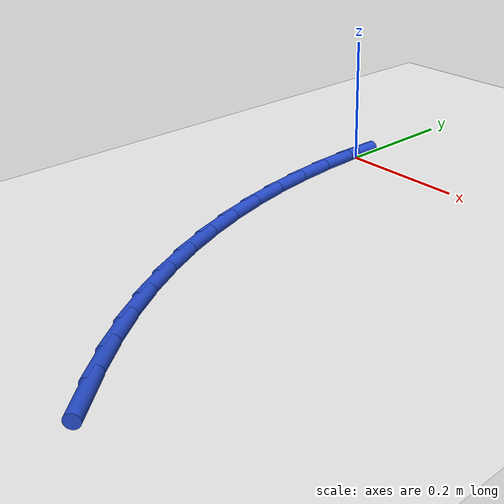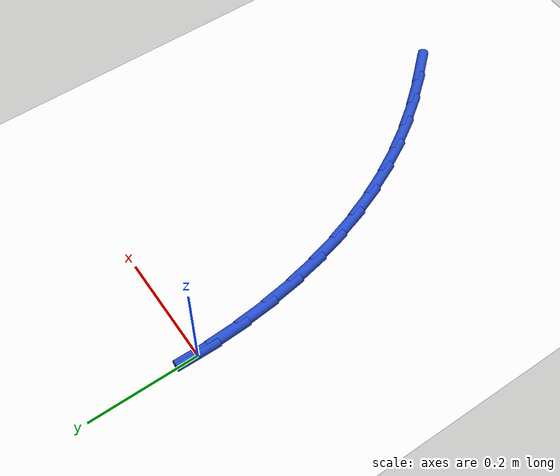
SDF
<sdf version="1.6">
 <world name="default">
  <model name="ground_plane">
   <static>1</static>
   <link name="link">
    <collision name="collision">
     <geometry><plane><normal>0 0 1</normal><size>100 100</size></plane></geometry>
     <surface><friction><ode><mu>100</mu><mu2>50</mu2></ode></friction></surface>
    </collision>
    <visual name="visual">
     <cast_shadows>0</cast_shadows>
     <geometry><plane><normal>0 0 1</normal><size>100 100</size></plane></geometry>
     <material>
      <script><uri>file://media/materials/scripts/gazebo.material</uri><name>Gazebo/WhiteGlow</name></script>
     </material>
    </visual>
   </link>
  </model>
  <model name="line">
   <link name="link_0">
    <pose>5.204170427930421e-17 8.326672684688674e-17 0.01 0 1.57 1.5598564289862142</pose>
    <collision name="collision">
     <geometry><cylinder><radius>0.01</radius><length>0.08</length></cylinder></geometry>
    </collision>
    <visual name="visual">
     <material>
      <script><name>Gazebo/Blue</name><uri>file://media/materials/scripts/gazebo.material</uri></script>
     </material>
     <geometry><cylinder><radius>0.01</radius><length>0.08</length></cylinder></geometry>
    </visual>
   </link>
   <link name="link_107">
    <pose>0.26830663447729053 -0.6729940227919134 0.01 0 1.57 -0.8289399935145662</pose>
    <collision name="collision">
     <geometry><cylinder><radius>0.01</radius><length>0.08</length></cylinder></geometry>
    </collision>
    <visual name="visual">
     <material>
      <script><name>Gazebo/Blue</name><uri>file://media/materials/scripts/gazebo.material</uri></script>
     </material>
     <geometry><cylinder><radius>0.01</radius><length>0.08</length></cylinder></geometry>
    </visual>
   </link>
   <link name="link_108">
    <pose>0.22995749821881928 -0.6311509632557744 0.01 0 1.57 -0.8826418803021383</pose>
    <collision name="collision">
     <geometry><cylinder><radius>0.01</radius><length>0.08</length></cylinder></geometry>
    </collision>
    <visual name="visual">
     <material>
      <script><name>Gazebo/Blue</name><uri>file://media/materials/scripts/gazebo.material</uri></script>
     </material>
     <geometry><cylinder><radius>0.01</radius><length>0.08</length></cylinder></geometry>
    </visual>
   </link>
   <link name="link_109">
    <pose>0.1941254974260003 -0.5875723450887796 0.01 0 1.57 -0.940952211047131</pose>
    <collision name="collision">
     <geometry><cylinder><radius>0.01</radius><length>0.08</length></cylinder></geometry>
    </collision>
    <visual name="visual">
     <material>
      <script><name>Gazebo/Blue</name><uri>file://media/materials/scripts/gazebo.material</uri></script>
     </material>
     <geometry><cylinder><radius>0.01</radius><length>0.08</length></cylinder></geometry>
    </visual>
   </link>
   <link name="link_110">
    <pose>0.16104012078870658 -0.5421800197658977 0.01 0 1.57 -1.003774996939989</pose>
    <collision name="collision">
     <geometry><cylinder><radius>0.01</radius><length>0.08</length></cylinder></geometry>
    </collision>
    <visual name="visual">
     <material>
      <script><name>Gazebo/Blue</name><uri>file://media/materials/scripts/gazebo.material</uri></script>
     </material>
     <geometry><cylinder><radius>0.01</radius><length>0.08</length></cylinder></geometry>
    </visual>
   </link>
   <link name="link_111">
    <pose>0.13093080693204961 -0.4948958840182357 0.01 0 1.57 -1.0695316241551185</pose>
    <collision name="collision">
     <geometry><cylinder><radius>0.01</radius><length>0.08</length></cylinder></geometry>
    </collision>
    <visual name="visual">
     <material>
      <script><name>Gazebo/Blue</name><uri>file://media/materials/scripts/gazebo.material</uri></script>
     </material>
     <geometry><cylinder><radius>0.01</radius><length>0.08</length></cylinder></geometry>
    </visual>
   </link>
   <link name="link_112">
    <pose>0.10397032700072134 -0.4456930592554653 0.01 0 1.57 -1.134090727155781</pose>
    <collision name="collision">
     <geometry><cylinder><radius>0.01</radius><length>0.08</length></cylinder></geometry>
    </collision>
    <visual name="visual">
     <material>
      <script><name>Gazebo/Blue</name><uri>file://media/materials/scripts/gazebo.material</uri></script>
     </material>
     <geometry><cylinder><radius>0.01</radius><length>0.08</length></cylinder></geometry>
    </visual>
   </link>
   <link name="link_113">
    <pose>0.08016600039203454 -0.3946942273144177 0.01 0 1.57 -1.196645047980867</pose>
    <collision name="collision">
     <geometry><cylinder><radius>0.01</radius><length>0.08</length></cylinder></geometry>
    </collision>
    <visual name="visual">
     <material>
      <script><name>Gazebo/Blue</name><uri>file://media/materials/scripts/gazebo.material</uri></script>
     </material>
     <geometry><cylinder><radius>0.01</radius><length>0.08</length></cylinder></geometry>
    </visual>
   </link>
   <link name="link_114">
    <pose>0.059495112734974896 -0.3420492191149103 0.01 0 1.57 -1.2571622183830244</pose>
    <collision name="collision">
     <geometry><cylinder><radius>0.01</radius><length>0.08</length></cylinder></geometry>
    </collision>
    <visual name="visual">
     <material>
      <script><name>Gazebo/Blue</name><uri>file://media/materials/scripts/gazebo.material</uri></script>
     </material>
     <geometry><cylinder><radius>0.01</radius><length>0.08</length></cylinder></geometry>
    </visual>
   </link>
   <link name="link_115">
    <pose>0.041934949658528106 -0.28790786557676007 0.01 0 1.57 -1.3156635980438531</pose>
    <collision name="collision">
     <geometry><cylinder><radius>0.01</radius><length>0.08</length></cylinder></geometry>
    </collision>
    <visual name="visual">
     <material>
      <script><name>Gazebo/Blue</name><uri>file://media/materials/scripts/gazebo.material</uri></script>
     </material>
     <geometry><cylinder><radius>0.01</radius><length>0.08</length></cylinder></geometry>
    </visual>
   </link>
   <link name="link_116">
    <pose>0.027462796791680594 -0.2324199976197861 0.01 0 1.57 -1.372214544447954</pose>
    <collision name="collision">
     <geometry><cylinder><radius>0.01</radius><length>0.08</length></cylinder></geometry>
    </collision>
    <visual name="visual">
     <material>
      <script><name>Gazebo/Blue</name><uri>file://media/materials/scripts/gazebo.material</uri></script>
     </material>
     <geometry><cylinder><radius>0.01</radius><length>0.08</length></cylinder></geometry>
    </visual>
   </link>
   <link name="link_117">
    <pose>0.016055939763418074 -0.17573544616380546 0.01 0 1.57 -1.426914895562071</pose>
    <collision name="collision">
     <geometry><cylinder><radius>0.01</radius><length>0.08</length></cylinder></geometry>
    </collision>
    <visual name="visual">
     <material>
      <script><name>Gazebo/Blue</name><uri>file://media/materials/scripts/gazebo.material</uri></script>
     </material>
     <geometry><cylinder><radius>0.01</radius><length>0.08</length></cylinder></geometry>
    </visual>
   </link>
   <link name="link_118">
    <pose>0.007691664202726508 -0.1180040421286359 0.01 0 1.57 -1.4798902794062858</pose>
    <collision name="collision">
     <geometry><cylinder><radius>0.01</radius><length>0.08</length></cylinder></geometry>
    </collision>
    <visual name="visual">
     <material>
      <script><name>Gazebo/Blue</name><uri>file://media/materials/scripts/gazebo.material</uri></script>
     </material>
     <geometry><cylinder><radius>0.01</radius><length>0.08</length></cylinder></geometry>
    </visual>
   </link>
   <link name="link_119">
    <pose>0.0023472557385918 -0.05937561643409431 0.01 0 1.57 -1.5312845834603095</pose>
    <collision name="collision">
     <geometry><cylinder><radius>0.01</radius><length>0.08</length></cylinder></geometry>
    </collision>
    <visual name="visual">
     <material>
      <script><name>Gazebo/Blue</name><uri>file://media/materials/scripts/gazebo.material</uri></script>
     </material>
     <geometry><cylinder><radius>0.01</radius><length>0.08</length></cylinder></geometry>
    </visual>
   </link>
   <link name="link_120">
    <pose>5.377642775528102e-17 -1.3877787807814457e-17 0.01 0 1.57 1.560338954278957</pose>
    <collision name="collision">
     <geometry><cylinder><radius>0.01</radius><length>0.08</length></cylinder></geometry>
    </collision>
    <visual name="visual">
     <material>
      <script><name>Gazebo/Blue</name><uri>file://media/materials/scripts/gazebo.material</uri></script>
     </material>
     <geometry><cylinder><radius>0.01</radius><length>0.08</length></cylinder></geometry>
    </visual>
   </link>
  </model>
 </world>
</sdf>
